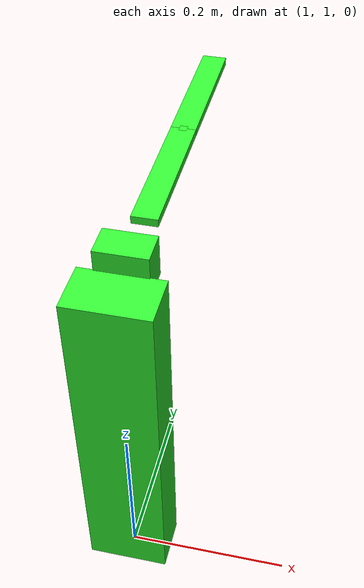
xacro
<?xml version="1.0"?>
<robot xmlns:xacro="http://www.ros.org/wiki/xacro"  name="robot">

    <link name="world"></link>
    <joint name="base_joint" type="fixed">
        <origin xyz="1 1 0" rpy="0 0 0"/>
        <parent link="world"/>
        <child link="base_link"/>
    </joint>
    <link name="base_link">
        <visual>
            <origin xyz="0 0 0.2225" rpy="0 0 0"/>
            <geometry>
                <box size="0.1 0.062 0.445" />
            </geometry>
            <material name="green">
                <color rgba="0.2 1 0.2 1"/>
            </material>
        </visual>
        <inertial>
            <origin xyz="0 0 0" rpy="0 0 0"/>
            <mass value="12" />
            <inertia ixx="2.26" ixy="0.0" ixz="0.0" iyy="6.26" iyz="0.0" izz="8.5" />
        </inertial>
    </link>
    <joint name="sl" type="prismatic">
        <origin xyz="0 0 0.445" rpy="0 0 0"/>
        <parent link="base_link"/>
        <child link="slider_link"/>
        <axis xyz="0 0 1"/>
        <limit lower="-0.445" upper="0" velocity="100" effort="100"/>
    </joint>
    <link name="slider_link">
        <visual>
            <origin xyz="0 0.049 0" rpy="0 0 0"/>
            <geometry>
                <box size="0.062 0.039 0.052" />
            </geometry>
            <material name="green">
                <color rgba="0.2 1 0.2 1"/>
            </material>
        </visual>
        <inertial>
            <origin xyz="0 0 0" rpy="0 0 0"/>
            <mass value="12" />
            <inertia ixx="2.26" ixy="0.0" ixz="0.0" iyy="6.26" iyz="0.0" izz="8.5" />
        </inertial>
    </link>
    <joint name="sh" type="revolute">
        <origin xyz="0 0.06 0" rpy="0 0 0"/>
        <parent link="slider_link"/>
        <child link="sh_link"/>
        <axis xyz="0 0 1"/>
        <limit lower="1.5708" upper="-1.5708" velocity="0.5" effort="1000"/>
    </joint>
    <link name="sh_link">
        <visual>
            <origin xyz="0 0.1525 0" rpy="0 0 0"/>
            <geometry>
                <box size="0.032 0.185 0.01" />
            </geometry>
            <material name="green">
                <color rgba="0.2 1 0.2 1"/>
            </material>
        </visual>
        <inertial>
            <origin xyz="0 0 0" rpy="0 0 0"/>
            <mass value="12" />
            <inertia ixx="2.26" ixy="0.0" ixz="0.0" iyy="6.26" iyz="0.0" izz="8.5" />
        </inertial>
    </link>
    <joint name="el" type="revolute">
        <origin xyz="0 0.245 0" rpy="0 0 0"/>
        <parent link="sh_link"/>
        <child link="el_link"/>
        <axis xyz="0 0 1"/>
        <limit lower="1.5708" upper="-1.5708" velocity="0.5" effort="1000"/>
    </joint>
    <link name="el_link">
        <visual>
            <origin xyz="0 0.0925 0" rpy="0 0 0"/>
            <geometry>
                <box size="0.032 0.185 0.01" />
            </geometry>
            <material name="green">
                <color rgba="0.2 1 0.2 1"/>
            </material>
        </visual>
        <inertial>
            <origin xyz="0 0 0" rpy="0 0 0"/>
            <mass value="12" />
            <inertia ixx="2.26" ixy="0.0" ixz="0.0" iyy="6.26" iyz="0.0" izz="8.5" />
        </inertial>
    </link>
    <joint name="cl" type="revolute">
        <origin xyz="0 0 0" rpy="0 0 0"/>
        <parent link="el_link"/>
        <child link="cl_link"/>
        <axis xyz="0 0 1"/>
        <limit lower="1.5708" upper="-1.5708" velocity="0.5" effort="1000"/>
    </joint>
    <link name="cl_link">
        <visual>
            <origin xyz="0 0 0" rpy="0 0 0"/>
            <geometry>
                <box size="0.01 0.01 0.01" />
            </geometry>
            <material name="green">
                <color rgba="0.2 1 0.2 1"/>
            </material>
        </visual>
        <inertial>
            <origin xyz="0 0 0" rpy="0 0 0"/>
            <mass value="12" />
            <inertia ixx="2.26" ixy="0.0" ixz="0.0" iyy="6.26" iyz="0.0" izz="8.5" />
        </inertial>
    </link>

</robot>
